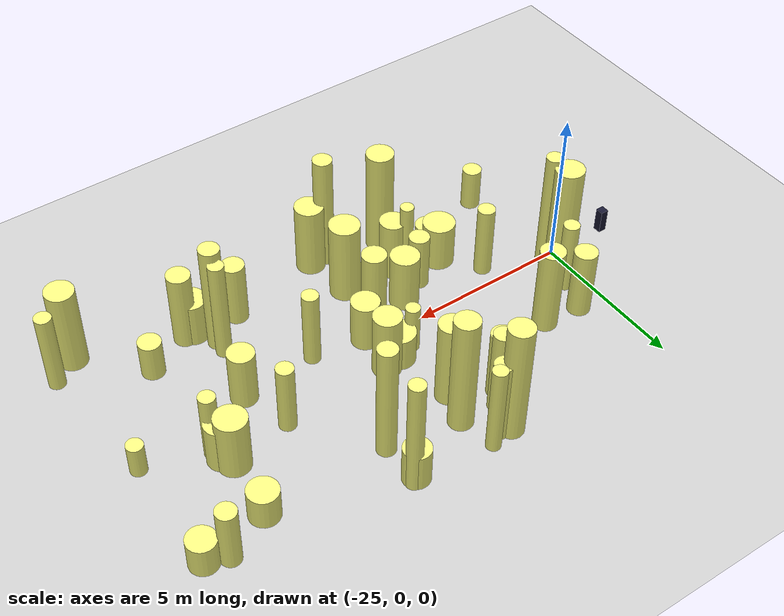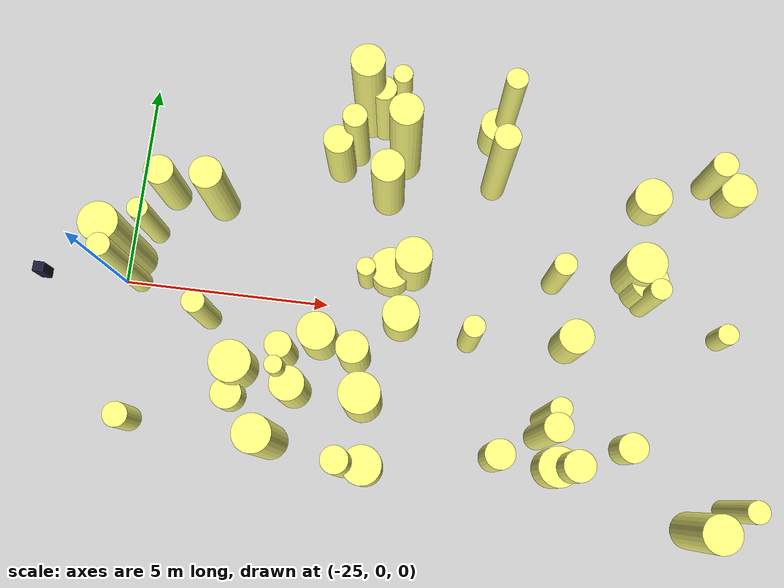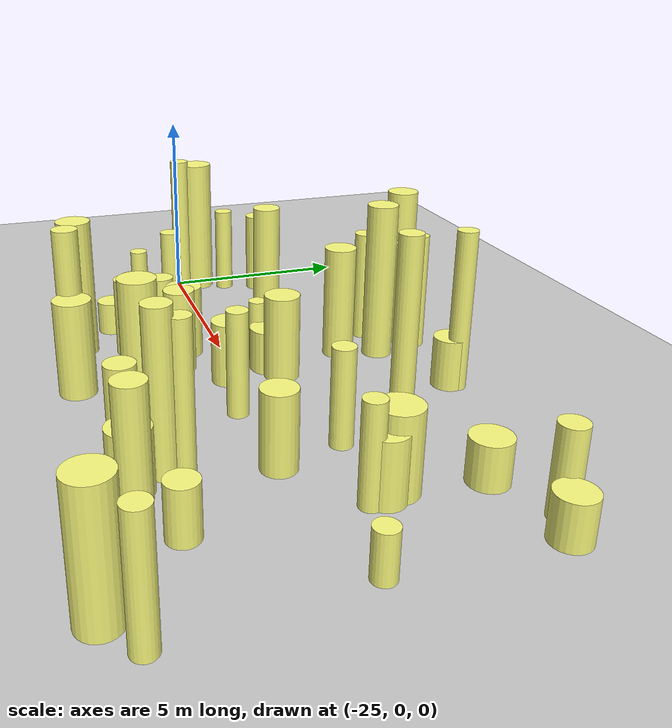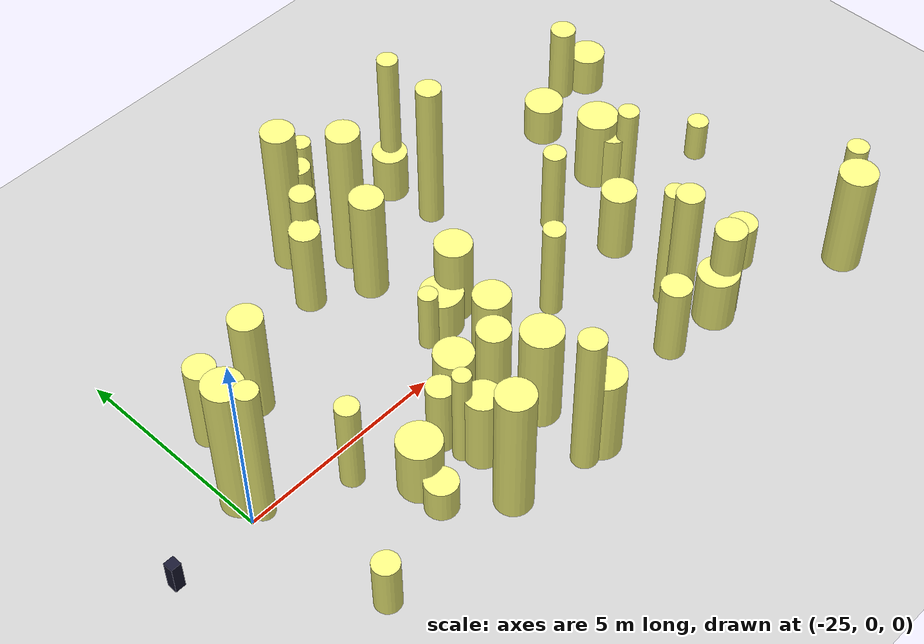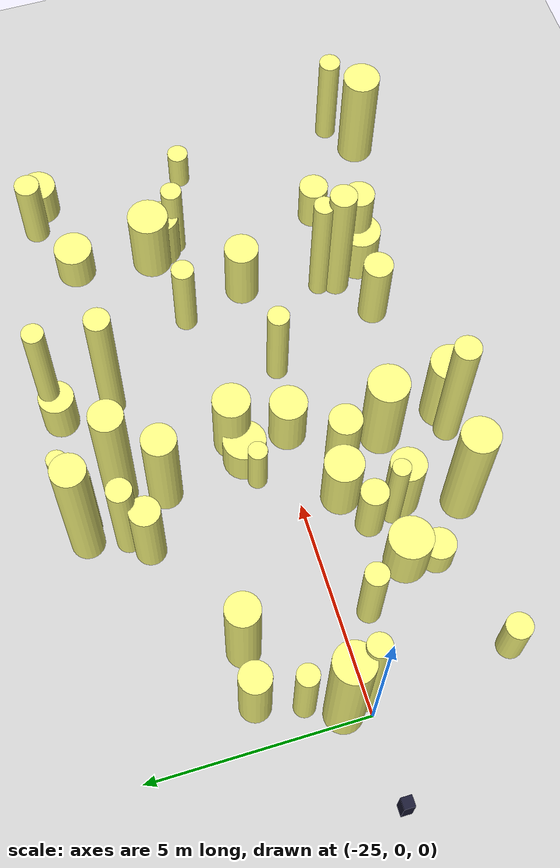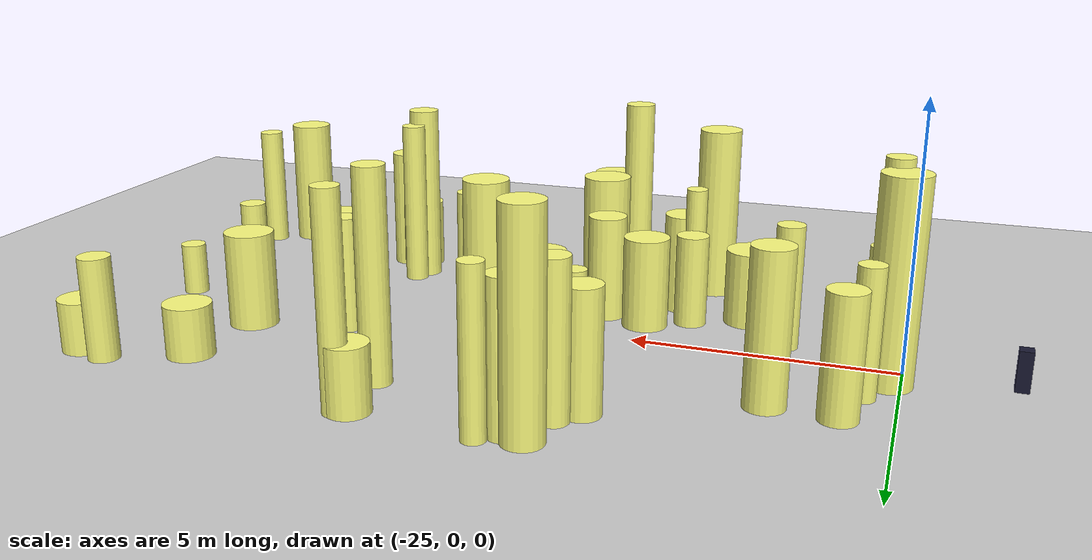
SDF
<sdf version="1.4">
 <world name="default">
  <include><uri>model://ground_plane</uri></include>
  <include><uri>model://sun</uri></include>
  <model name="forest">
   <static>true</static>
   <link name="cylinder0">
    <pose>-12.502721954358915 -2.6659656342065974 0.6085833904426031 0 0 0</pose>
    <visual name="visual">
     <geometry>
      <cylinder><radius>0.3510681015145204</radius><length>1.2171667808852062</length></cylinder>
     </geometry>
     <material>
      <ambient>0.6 0.6 0.6 1</ambient>
      <diffuse>1 1 0.5 1</diffuse>
      <specular>0 0 0</specular>
      <emissive>0 0 0 1</emissive>
     </material>
    </visual>
    <collision name="collision">
     <geometry>
      <cylinder><radius>0.3510681015145204</radius><length>1.2171667808852062</length></cylinder>
     </geometry>
     <max_contacts>0</max_contacts>
    </collision>
   </link>
   <link name="cylinder2">
    <pose>-18.162453601790588 -0.2444685721580253 0.7804369950678622 0 0 0</pose>
    <visual name="visual">
     <geometry>
      <cylinder><radius>0.4354509630093727</radius><length>1.5608739901357245</length></cylinder>
     </geometry>
     <material>
      <ambient>0.6 0.6 0.6 1</ambient>
      <diffuse>1 1 0.5 1</diffuse>
      <specular>0 0 0</specular>
      <emissive>0 0 0 1</emissive>
     </material>
    </visual>
    <collision name="collision">
     <geometry>
      <cylinder><radius>0.4354509630093727</radius><length>1.5608739901357245</length></cylinder>
     </geometry>
     <max_contacts>0</max_contacts>
    </collision>
   </link>
   <link name="cylinder6">
    <pose>-15.604253564923754 -3.2093322992431625 1.0340001270067756 0 0 0</pose>
    <visual name="visual">
     <geometry>
      <cylinder><radius>0.3472464015730837</radius><length>2.068000254013551</length></cylinder>
     </geometry>
     <material>
      <ambient>0.6 0.6 0.6 1</ambient>
      <diffuse>1 1 0.5 1</diffuse>
      <specular>0 0 0</specular>
      <emissive>0 0 0 1</emissive>
     </material>
    </visual>
    <collision name="collision">
     <geometry>
      <cylinder><radius>0.3472464015730837</radius><length>2.068000254013551</length></cylinder>
     </geometry>
     <max_contacts>0</max_contacts>
    </collision>
   </link>
   <link name="cylinder7">
    <pose>-24.395725136393526 -3.3159768479499006 0.6917096451607068 0 0 0</pose>
    <visual name="visual">
     <geometry>
      <cylinder><radius>0.29855471631764946</radius><length>1.3834192903214135</length></cylinder>
     </geometry>
     <material>
      <ambient>0.6 0.6 0.6 1</ambient>
      <diffuse>1 1 0.5 1</diffuse>
      <specular>0 0 0</specular>
      <emissive>0 0 0 1</emissive>
     </material>
    </visual>
    <collision name="collision">
     <geometry>
      <cylinder><radius>0.29855471631764946</radius><length>1.3834192903214135</length></cylinder>
     </geometry>
     <max_contacts>0</max_contacts>
    </collision>
   </link>
   <link name="cylinder9">
    <pose>-24.634450793001072 0.05189174106900296 1.98661205535265 0 0 0</pose>
    <visual name="visual">
     <geometry><cylinder><radius>0.2565379622526275</radius><length>3.9732241107053</length></cylinder></geometry>
     <material>
      <ambient>0.6 0.6 0.6 1</ambient>
      <diffuse>1 1 0.5 1</diffuse>
      <specular>0 0 0</specular>
      <emissive>0 0 0 1</emissive>
     </material>
    </visual>
    <collision name="collision">
     <geometry><cylinder><radius>0.2565379622526275</radius><length>3.9732241107053</length></cylinder></geometry>
     <max_contacts>0</max_contacts>
    </collision>
   </link>
   <link name="cylinder20">
    <pose>-19.49257124488244 4.815404987633817 1.9871582576625482 0 0 0</pose>
    <visual name="visual">
     <geometry>
      <cylinder><radius>0.38212930709392834</radius><length>3.9743165153250963</length></cylinder>
     </geometry>
     <material>
      <ambient>0.6 0.6 0.6 1</ambient>
      <diffuse>1 1 0.5 1</diffuse>
      <specular>0 0 0</specular>
      <emissive>0 0 0 1</emissive>
     </material>
    </visual>
    <collision name="collision">
     <geometry>
      <cylinder><radius>0.38212930709392834</radius><length>3.9743165153250963</length></cylinder>
     </geometry>
     <max_contacts>0</max_contacts>
    </collision>
   </link>
   <link name="cylinder25">
    <pose>-22.87648430715794 2.2072677745387717 1.423964659570777 0 0 0</pose>
    <visual name="visual">
     <geometry>
      <cylinder><radius>0.38179037752833966</radius><length>2.847929319141554</length></cylinder>
     </geometry>
     <material>
      <ambient>0.6 0.6 0.6 1</ambient>
      <diffuse>1 1 0.5 1</diffuse>
      <specular>0 0 0</specular>
      <emissive>0 0 0 1</emissive>
     </material>
    </visual>
    <collision name="collision">
     <geometry>
      <cylinder><radius>0.38179037752833966</radius><length>2.847929319141554</length></cylinder>
     </geometry>
     <max_contacts>0</max_contacts>
    </collision>
   </link>
   <link name="cylinder30">
    <pose>-12.437484253757225 3.403493577080285 0.5104835917112851 0 0 0</pose>
    <visual name="visual">
     <geometry>
      <cylinder><radius>0.4584076746730561</radius><length>1.0209671834225702</length></cylinder>
     </geometry>
     <material>
      <ambient>0.6 0.6 0.6 1</ambient>
      <diffuse>1 1 0.5 1</diffuse>
      <specular>0 0 0</specular>
      <emissive>0 0 0 1</emissive>
     </material>
    </visual>
    <collision name="collision">
     <geometry>
      <cylinder><radius>0.4584076746730561</radius><length>1.0209671834225702</length></cylinder>
     </geometry>
     <max_contacts>0</max_contacts>
    </collision>
   </link>
   <link name="cylinder38">
    <pose>-10.054779706547345 -3.8103376774504296 1.3178086906775555 0 0 0</pose>
    <visual name="visual">
     <geometry>
      <cylinder><radius>0.25343044838977596</radius><length>2.635617381355111</length></cylinder>
     </geometry>
     <material>
      <ambient>0.6 0.6 0.6 1</ambient>
      <diffuse>1 1 0.5 1</diffuse>
      <specular>0 0 0</specular>
      <emissive>0 0 0 1</emissive>
     </material>
    </visual>
    <collision name="collision">
     <geometry>
      <cylinder><radius>0.25343044838977596</radius><length>2.635617381355111</length></cylinder>
     </geometry>
     <max_contacts>0</max_contacts>
    </collision>
   </link>
   <link name="cylinder42">
    <pose>-18.82839487472479 2.847118229106637 1.428111722365252 0 0 0</pose>
    <visual name="visual">
     <geometry>
      <cylinder><radius>0.39076796356919996</radius><length>2.856223444730504</length></cylinder>
     </geometry>
     <material>
      <ambient>0.6 0.6 0.6 1</ambient>
      <diffuse>1 1 0.5 1</diffuse>
      <specular>0 0 0</specular>
      <emissive>0 0 0 1</emissive>
     </material>
    </visual>
    <collision name="collision">
     <geometry>
      <cylinder><radius>0.39076796356919996</radius><length>2.856223444730504</length></cylinder>
     </geometry>
     <max_contacts>0</max_contacts>
    </collision>
   </link>
   <link name="cylinder43">
    <pose>-18.843256166601506 -2.2814033712467485 1.3097579532869124 0 0 0</pose>
    <visual name="visual">
     <geometry>
      <cylinder><radius>0.47332808294365725</radius><length>2.6195159065738247</length></cylinder>
     </geometry>
     <material>
      <ambient>0.6 0.6 0.6 1</ambient>
      <diffuse>1 1 0.5 1</diffuse>
      <specular>0 0 0</specular>
      <emissive>0 0 0 1</emissive>
     </material>
    </visual>
    <collision name="collision">
     <geometry>
      <cylinder><radius>0.47332808294365725</radius><length>2.6195159065738247</length></cylinder>
     </geometry>
     <max_contacts>0</max_contacts>
    </collision>
   </link>
   <link name="cylinder46">
    <pose>-19.122946769099475 -3.8112538472455504 1.9331050397941834 0 0 0</pose>
    <visual name="visual">
     <geometry>
      <cylinder><radius>0.3000905206304188</radius><length>3.8662100795883667</length></cylinder>
     </geometry>
     <material>
      <ambient>0.6 0.6 0.6 1</ambient>
      <diffuse>1 1 0.5 1</diffuse>
      <specular>0 0 0</specular>
      <emissive>0 0 0 1</emissive>
     </material>
    </visual>
    <collision name="collision">
     <geometry>
      <cylinder><radius>0.3000905206304188</radius><length>3.8662100795883667</length></cylinder>
     </geometry>
     <max_contacts>0</max_contacts>
    </collision>
   </link>
   <link name="cylinder51">
    <pose>-14.109559301288204 -0.3474992445330791 0.9073661372124011 0 0 0</pose>
    <visual name="visual">
     <geometry>
      <cylinder><radius>0.40455226187245275</radius><length>1.8147322744248022</length></cylinder>
     </geometry>
     <material>
      <ambient>0.6 0.6 0.6 1</ambient>
      <diffuse>1 1 0.5 1</diffuse>
      <specular>0 0 0</specular>
      <emissive>0 0 0 1</emissive>
     </material>
    </visual>
    <collision name="collision">
     <geometry>
      <cylinder><radius>0.40455226187245275</radius><length>1.8147322744248022</length></cylinder>
     </geometry>
     <max_contacts>0</max_contacts>
    </collision>
   </link>
   <link name="cylinder53">
    <pose>-16.494669514456547 -0.5117610370310093 1.2593101118825551 0 0 0</pose>
    <visual name="visual">
     <geometry>
      <cylinder><radius>0.2535761571720407</radius><length>2.5186202237651103</length></cylinder>
     </geometry>
     <material>
      <ambient>0.6 0.6 0.6 1</ambient>
      <diffuse>1 1 0.5 1</diffuse>
      <specular>0 0 0</specular>
      <emissive>0 0 0 1</emissive>
     </material>
    </visual>
    <collision name="collision">
     <geometry>
      <cylinder><radius>0.2535761571720407</radius><length>2.5186202237651103</length></cylinder>
     </geometry>
     <max_contacts>0</max_contacts>
    </collision>
   </link>
   <link name="cylinder54">
    <pose>-22.805749904539645 -0.6607111246821127 1.2026532719093082 0 0 0</pose>
    <visual name="visual">
     <geometry>
      <cylinder><radius>0.26726074162941854</radius><length>2.4053065438186163</length></cylinder>
     </geometry>
     <material>
      <ambient>0.6 0.6 0.6 1</ambient>
      <diffuse>1 1 0.5 1</diffuse>
      <specular>0 0 0</specular>
      <emissive>0 0 0 1</emissive>
     </material>
    </visual>
    <collision name="collision">
     <geometry>
      <cylinder><radius>0.26726074162941854</radius><length>2.4053065438186163</length></cylinder>
     </geometry>
     <max_contacts>0</max_contacts>
    </collision>
   </link>
   <link name="cylinder55">
    <pose>-19.710329818238662 3.9275955160549767 1.434383724121817 0 0 0</pose>
    <visual name="visual">
     <geometry>
      <cylinder><radius>0.28443449646790175</radius><length>2.868767448243634</length></cylinder>
     </geometry>
     <material>
      <ambient>0.6 0.6 0.6 1</ambient>
      <diffuse>1 1 0.5 1</diffuse>
      <specular>0 0 0</specular>
      <emissive>0 0 0 1</emissive>
     </material>
    </visual>
    <collision name="collision">
     <geometry>
      <cylinder><radius>0.28443449646790175</radius><length>2.868767448243634</length></cylinder>
     </geometry>
     <max_contacts>0</max_contacts>
    </collision>
   </link>
   <link name="cylinder56">
    <pose>-24.097551499504693 2.3135811429826294 1.1331088385891852 0 0 0</pose>
    <visual name="visual">
     <geometry>
      <cylinder><radius>0.353535340649888</radius><length>2.2662176771783704</length></cylinder>
     </geometry>
     <material>
      <ambient>0.6 0.6 0.6 1</ambient>
      <diffuse>1 1 0.5 1</diffuse>
      <specular>0 0 0</specular>
      <emissive>0 0 0 1</emissive>
     </material>
    </visual>
    <collision name="collision">
     <geometry>
      <cylinder><radius>0.353535340649888</radius><length>2.2662176771783704</length></cylinder>
     </geometry>
     <max_contacts>0</max_contacts>
    </collision>
   </link>
   <link name="cylinder58">
    <pose>-14.54550295379825 -2.1772764706118677 1.7017071925377554 0 0 0</pose>
    <visual name="visual">
     <geometry>
      <cylinder><radius>0.2418624907264289</radius><length>3.4034143850755108</length></cylinder>
     </geometry>
     <material>
      <ambient>0.6 0.6 0.6 1</ambient>
      <diffuse>1 1 0.5 1</diffuse>
      <specular>0 0 0</specular>
      <emissive>0 0 0 1</emissive>
     </material>
    </visual>
    <collision name="collision">
     <geometry>
      <cylinder><radius>0.2418624907264289</radius><length>3.4034143850755108</length></cylinder>
     </geometry>
     <max_contacts>0</max_contacts>
    </collision>
   </link>
   <link name="cylinder61">
    <pose>-18.61169168680142 -3.8167598807858214 1.1742146294918732 0 0 0</pose>
    <visual name="visual">
     <geometry>
      <cylinder><radius>0.4480855897614787</radius><length>2.3484292589837463</length></cylinder>
     </geometry>
     <material>
      <ambient>0.6 0.6 0.6 1</ambient>
      <diffuse>1 1 0.5 1</diffuse>
      <specular>0 0 0</specular>
      <emissive>0 0 0 1</emissive>
     </material>
    </visual>
    <collision name="collision">
     <geometry>
      <cylinder><radius>0.4480855897614787</radius><length>2.3484292589837463</length></cylinder>
     </geometry>
     <max_contacts>0</max_contacts>
    </collision>
   </link>
   <link name="cylinder63">
    <pose>-24.777296737644782 0.5791565436668282 1.9116936432290066 0 0 0</pose>
    <visual name="visual">
     <geometry>
      <cylinder><radius>0.43988371552793637</radius><length>3.823387286458013</length></cylinder>
     </geometry>
     <material>
      <ambient>0.6 0.6 0.6 1</ambient>
      <diffuse>1 1 0.5 1</diffuse>
      <specular>0 0 0</specular>
      <emissive>0 0 0 1</emissive>
     </material>
    </visual>
    <collision name="collision">
     <geometry>
      <cylinder><radius>0.43988371552793637</radius><length>3.823387286458013</length></cylinder>
     </geometry>
     <max_contacts>0</max_contacts>
    </collision>
   </link>
   <link name="cylinder66">
    <pose>-21.950964235941306 -1.8020715551897135 0.7493875586951271 0 0 0</pose>
    <visual name="visual">
     <geometry>
      <cylinder><radius>0.4995488206285661</radius><length>1.4987751173902542</length></cylinder>
     </geometry>
     <material>
      <ambient>0.6 0.6 0.6 1</ambient>
      <diffuse>1 1 0.5 1</diffuse>
      <specular>0 0 0</specular>
      <emissive>0 0 0 1</emissive>
     </material>
    </visual>
    <collision name="collision">
     <geometry>
      <cylinder><radius>0.4995488206285661</radius><length>1.4987751173902542</length></cylinder>
     </geometry>
     <max_contacts>0</max_contacts>
    </collision>
   </link>
   <link name="cylinder67">
    <pose>-14.571014453200315 1.189533228159437 1.1406618700133115 0 0 0</pose>
    <visual name="visual">
     <geometry>
      <cylinder><radius>0.26389212586772715</radius><length>2.281323740026623</length></cylinder>
     </geometry>
     <material>
      <ambient>0.6 0.6 0.6 1</ambient>
      <diffuse>1 1 0.5 1</diffuse>
      <specular>0 0 0</specular>
      <emissive>0 0 0 1</emissive>
     </material>
    </visual>
    <collision name="collision">
     <geometry>
      <cylinder><radius>0.26389212586772715</radius><length>2.281323740026623</length></cylinder>
     </geometry>
     <max_contacts>0</max_contacts>
    </collision>
   </link>
   <link name="cylinder70">
    <pose>-19.15787869780511 -1.2277771723298079 1.0432503948201146 0 0 0</pose>
    <visual name="visual">
     <geometry>
      <cylinder><radius>0.3810207468841596</radius><length>2.0865007896402292</length></cylinder>
     </geometry>
     <material>
      <ambient>0.6 0.6 0.6 1</ambient>
      <diffuse>1 1 0.5 1</diffuse>
      <specular>0 0 0</specular>
      <emissive>0 0 0 1</emissive>
     </material>
    </visual>
    <collision name="collision">
     <geometry>
      <cylinder><radius>0.3810207468841596</radius><length>2.0865007896402292</length></cylinder>
     </geometry>
     <max_contacts>0</max_contacts>
    </collision>
   </link>
   <link name="cylinder73">
    <pose>-20.07237889721357 3.518384226940082 1.1502417446762592 0 0 0</pose>
    <visual name="visual">
     <geometry>
      <cylinder><radius>0.3491052908411866</radius><length>2.3004834893525183</length></cylinder>
     </geometry>
     <material>
      <ambient>0.6 0.6 0.6 1</ambient>
      <diffuse>1 1 0.5 1</diffuse>
      <specular>0 0 0</specular>
      <emissive>0 0 0 1</emissive>
     </material>
    </visual>
    <collision name="collision">
     <geometry>
      <cylinder><radius>0.3491052908411866</radius><length>2.3004834893525183</length></cylinder>
     </geometry>
     <max_contacts>0</max_contacts>
    </collision>
   </link>
   <link name="cylinder77">
    <pose>-19.131900366275012 4.705054420219337 1.3739754272877218 0 0 0</pose>
    <visual name="visual">
     <geometry>
      <cylinder><radius>0.29365385042139736</radius><length>2.7479508545754436</length></cylinder>
     </geometry>
     <material>
      <ambient>0.6 0.6 0.6 1</ambient>
      <diffuse>1 1 0.5 1</diffuse>
      <specular>0 0 0</specular>
      <emissive>0 0 0 1</emissive>
     </material>
    </visual>
    <collision name="collision">
     <geometry>
      <cylinder><radius>0.29365385042139736</radius><length>2.7479508545754436</length></cylinder>
     </geometry>
     <max_contacts>0</max_contacts>
    </collision>
   </link>
   <link name="cylinder81">
    <pose>-12.473571658972798 1.2151662505529615 0.7502490287101929 0 0 0</pose>
    <visual name="visual">
     <geometry>
      <cylinder><radius>0.4398459780291022</radius><length>1.5004980574203859</length></cylinder>
     </geometry>
     <material>
      <ambient>0.6 0.6 0.6 1</ambient>
      <diffuse>1 1 0.5 1</diffuse>
      <specular>0 0 0</specular>
      <emissive>0 0 0 1</emissive>
     </material>
    </visual>
    <collision name="collision">
     <geometry>
      <cylinder><radius>0.4398459780291022</radius><length>1.5004980574203859</length></cylinder>
     </geometry>
     <max_contacts>0</max_contacts>
    </collision>
   </link>
   <link name="cylinder82">
    <pose>-10.454111830440377 0.2478670152898239 0.524045633966265 0 0 0</pose>
    <visual name="visual">
     <geometry>
      <cylinder><radius>0.25075941462220197</radius><length>1.04809126793253</length></cylinder>
     </geometry>
     <material>
      <ambient>0.6 0.6 0.6 1</ambient>
      <diffuse>1 1 0.5 1</diffuse>
      <specular>0 0 0</specular>
      <emissive>0 0 0 1</emissive>
     </material>
    </visual>
    <collision name="collision">
     <geometry>
      <cylinder><radius>0.25075941462220197</radius><length>1.04809126793253</length></cylinder>
     </geometry>
     <max_contacts>0</max_contacts>
    </collision>
   </link>
   <link name="cylinder85">
    <pose>-16.28044864846122 3.444077093092373 1.9729433822088338 0 0 0</pose>
    <visual name="visual">
     <geometry>
      <cylinder><radius>0.2915125441848997</radius><length>3.9458867644176676</length></cylinder>
     </geometry>
     <material>
      <ambient>0.6 0.6 0.6 1</ambient>
      <diffuse>1 1 0.5 1</diffuse>
      <specular>0 0 0</specular>
      <emissive>0 0 0 1</emissive>
     </material>
    </visual>
    <collision name="collision">
     <geometry>
      <cylinder><radius>0.2915125441848997</radius><length>3.9458867644176676</length></cylinder>
     </geometry>
     <max_contacts>0</max_contacts>
    </collision>
   </link>
   <link name="cylinder86">
    <pose>-20.79591894531364 -1.8833026183785293 1.304631273310267 0 0 0</pose>
    <visual name="visual">
     <geometry>
      <cylinder><radius>0.20748581537525626</radius><length>2.609262546620534</length></cylinder>
     </geometry>
     <material>
      <ambient>0.6 0.6 0.6 1</ambient>
      <diffuse>1 1 0.5 1</diffuse>
      <specular>0 0 0</specular>
      <emissive>0 0 0 1</emissive>
     </material>
    </visual>
    <collision name="collision">
     <geometry>
      <cylinder><radius>0.20748581537525626</radius><length>2.609262546620534</length></cylinder>
     </geometry>
     <max_contacts>0</max_contacts>
    </collision>
   </link>
   <link name="cylinder89">
    <pose>-18.538575459417288 0.8975627072875758 0.5418179239034299 0 0 0</pose>
    <visual name="visual">
     <geometry>
      <cylinder><radius>0.495280417912179</radius><length>1.0836358478068597</length></cylinder>
     </geometry>
     <material>
      <ambient>0.6 0.6 0.6 1</ambient>
      <diffuse>1 1 0.5 1</diffuse>
      <specular>0 0 0</specular>
      <emissive>0 0 0 1</emissive>
     </material>
    </visual>
    <collision name="collision">
     <geometry>
      <cylinder><radius>0.495280417912179</radius><length>1.0836358478068597</length></cylinder>
     </geometry>
     <max_contacts>0</max_contacts>
    </collision>
   </link>
   <link name="cylinder96">
    <pose>-14.604319433531 -2.5985632078970724 1.8355189407777162 0 0 0</pose>
    <visual name="visual">
     <geometry>
      <cylinder><radius>0.3122220851284629</radius><length>3.6710378815554323</length></cylinder>
     </geometry>
     <material>
      <ambient>0.6 0.6 0.6 1</ambient>
      <diffuse>1 1 0.5 1</diffuse>
      <specular>0 0 0</specular>
      <emissive>0 0 0 1</emissive>
     </material>
    </visual>
    <collision name="collision">
     <geometry>
      <cylinder><radius>0.3122220851284629</radius><length>3.6710378815554323</length></cylinder>
     </geometry>
     <max_contacts>0</max_contacts>
    </collision>
   </link>
   <link name="cylinder97">
    <pose>-22.041307113895776 -2.495609636847166 0.4295317646186678 0 0 0</pose>
    <visual name="visual">
     <geometry>
      <cylinder><radius>0.3750792223847486</radius><length>0.8590635292373356</length></cylinder>
     </geometry>
     <material>
      <ambient>0.6 0.6 0.6 1</ambient>
      <diffuse>1 1 0.5 1</diffuse>
      <specular>0 0 0</specular>
      <emissive>0 0 0 1</emissive>
     </material>
    </visual>
    <collision name="collision">
     <geometry>
      <cylinder><radius>0.3750792223847486</radius><length>0.8590635292373356</length></cylinder>
     </geometry>
     <max_contacts>0</max_contacts>
    </collision>
   </link>
   <link name="cylinder102">
    <pose>-20.93075195524175 -3.462613262601657 1.7541170120772427 0 0 0</pose>
    <visual name="visual">
     <geometry>
      <cylinder><radius>0.4276249674449577</radius><length>3.5082340241544854</length></cylinder>
     </geometry>
     <material>
      <ambient>0.6 0.6 0.6 1</ambient>
      <diffuse>1 1 0.5 1</diffuse>
      <specular>0 0 0</specular>
      <emissive>0 0 0 1</emissive>
     </material>
    </visual>
    <collision name="collision">
     <geometry>
      <cylinder><radius>0.4276249674449577</radius><length>3.5082340241544854</length></cylinder>
     </geometry>
     <max_contacts>0</max_contacts>
    </collision>
   </link>
   <link name="cylinder104">
    <pose>-16.36803477911813 4.693656611833211 0.6230062373205562 0 0 0</pose>
    <visual name="visual">
     <geometry>
      <cylinder><radius>0.4115219410225628</radius><length>1.2460124746411123</length></cylinder>
     </geometry>
     <material>
      <ambient>0.6 0.6 0.6 1</ambient>
      <diffuse>1 1 0.5 1</diffuse>
      <specular>0 0 0</specular>
      <emissive>0 0 0 1</emissive>
     </material>
    </visual>
    <collision name="collision">
     <geometry>
      <cylinder><radius>0.4115219410225628</radius><length>1.2460124746411123</length></cylinder>
     </geometry>
     <max_contacts>0</max_contacts>
    </collision>
   </link>
   <link name="cylinder107">
    <pose>-10.390217408402048 3.811011985422958 0.5061870851489898 0 0 0</pose>
    <visual name="visual">
     <geometry>
      <cylinder><radius>0.42941939991450384</radius><length>1.0123741702979796</length></cylinder>
     </geometry>
     <material>
      <ambient>0.6 0.6 0.6 1</ambient>
      <diffuse>1 1 0.5 1</diffuse>
      <specular>0 0 0</specular>
      <emissive>0 0 0 1</emissive>
     </material>
    </visual>
    <collision name="collision">
     <geometry>
      <cylinder><radius>0.42941939991450384</radius><length>1.0123741702979796</length></cylinder>
     </geometry>
     <max_contacts>0</max_contacts>
    </collision>
   </link>
   <link name="cylinder111">
    <pose>-16.20273688729197 4.807904855583713 1.9510681703880337 0 0 0</pose>
    <visual name="visual">
     <geometry>
      <cylinder><radius>0.24294534919403082</radius><length>3.9021363407760674</length></cylinder>
     </geometry>
     <material>
      <ambient>0.6 0.6 0.6 1</ambient>
      <diffuse>1 1 0.5 1</diffuse>
      <specular>0 0 0</specular>
      <emissive>0 0 0 1</emissive>
     </material>
    </visual>
    <collision name="collision">
     <geometry>
      <cylinder><radius>0.24294534919403082</radius><length>3.9021363407760674</length></cylinder>
     </geometry>
     <max_contacts>0</max_contacts>
    </collision>
   </link>
   <link name="cylinder114">
    <pose>-13.908718793123903 -3.2823868718391322 1.2673436649258805 0 0 0</pose>
    <visual name="visual">
     <geometry>
      <cylinder><radius>0.35916579970994567</radius><length>2.534687329851761</length></cylinder>
     </geometry>
     <material>
      <ambient>0.6 0.6 0.6 1</ambient>
      <diffuse>1 1 0.5 1</diffuse>
      <specular>0 0 0</specular>
      <emissive>0 0 0 1</emissive>
     </material>
    </visual>
    <collision name="collision">
     <geometry>
      <cylinder><radius>0.35916579970994567</radius><length>2.534687329851761</length></cylinder>
     </geometry>
     <max_contacts>0</max_contacts>
    </collision>
   </link>
   <link name="cylinder115">
    <pose>-10.831256980114755 -4.364179941155668 1.3832199864570636 0 0 0</pose>
    <visual name="visual">
     <geometry>
      <cylinder><radius>0.43894951229227175</radius><length>2.766439972914127</length></cylinder>
     </geometry>
     <material>
      <ambient>0.6 0.6 0.6 1</ambient>
      <diffuse>1 1 0.5 1</diffuse>
      <specular>0 0 0</specular>
      <emissive>0 0 0 1</emissive>
     </material>
    </visual>
    <collision name="collision">
     <geometry>
      <cylinder><radius>0.43894951229227175</radius><length>2.766439972914127</length></cylinder>
     </geometry>
     <max_contacts>0</max_contacts>
    </collision>
   </link>
   <link name="cylinder116">
    <pose>-20.857658008479934 -1.3316109614898277 0.9100707479111858 0 0 0</pose>
    <visual name="visual">
     <geometry>
      <cylinder><radius>0.317359588114245</radius><length>1.8201414958223716</length></cylinder>
     </geometry>
     <material>
      <ambient>0.6 0.6 0.6 1</ambient>
      <diffuse>1 1 0.5 1</diffuse>
      <specular>0 0 0</specular>
      <emissive>0 0 0 1</emissive>
     </material>
    </visual>
    <collision name="collision">
     <geometry>
      <cylinder><radius>0.317359588114245</radius><length>1.8201414958223716</length></cylinder>
     </geometry>
     <max_contacts>0</max_contacts>
    </collision>
   </link>
   <link name="cylinder119">
    <pose>-12.381449604811866 0.8708667843847238 1.1360815766539958 0 0 0</pose>
    <visual name="visual">
     <geometry>
      <cylinder><radius>0.24805818032337174</radius><length>2.2721631533079916</length></cylinder>
     </geometry>
     <material>
      <ambient>0.6 0.6 0.6 1</ambient>
      <diffuse>1 1 0.5 1</diffuse>
      <specular>0 0 0</specular>
      <emissive>0 0 0 1</emissive>
     </material>
    </visual>
    <collision name="collision">
     <geometry>
      <cylinder><radius>0.24805818032337174</radius><length>2.2721631533079916</length></cylinder>
     </geometry>
     <max_contacts>0</max_contacts>
    </collision>
   </link>
   <link name="cylinder122">
    <pose>-20.03585580293435 -0.9184188762301808 0.9104262956513443 0 0 0</pose>
    <visual name="visual">
     <geometry>
      <cylinder><radius>0.4493938798735404</radius><length>1.8208525913026885</length></cylinder>
     </geometry>
     <material>
      <ambient>0.6 0.6 0.6 1</ambient>
      <diffuse>1 1 0.5 1</diffuse>
      <specular>0 0 0</specular>
      <emissive>0 0 0 1</emissive>
     </material>
    </visual>
    <collision name="collision">
     <geometry>
      <cylinder><radius>0.4493938798735404</radius><length>1.8208525913026885</length></cylinder>
     </geometry>
     <max_contacts>0</max_contacts>
    </collision>
   </link>
   <link name="cylinder124">
    <pose>-19.101055602580104 0.7544745946272613 0.791822843688906 0 0 0</pose>
    <visual name="visual">
     <geometry>
      <cylinder><radius>0.22300250673651503</radius><length>1.583645687377812</length></cylinder>
     </geometry>
     <material>
      <ambient>0.6 0.6 0.6 1</ambient>
      <diffuse>1 1 0.5 1</diffuse>
      <specular>0 0 0</specular>
      <emissive>0 0 0 1</emissive>
     </material>
    </visual>
    <collision name="collision">
     <geometry>
      <cylinder><radius>0.22300250673651503</radius><length>1.583645687377812</length></cylinder>
     </geometry>
     <max_contacts>0</max_contacts>
    </collision>
   </link>
   <link name="cylinder125">
    <pose>-14.194400764570142 -3.3023342177779744 0.7149660700001347 0 0 0</pose>
    <visual name="visual">
     <geometry>
      <cylinder><radius>0.4738928855101009</radius><length>1.4299321400002694</length></cylinder>
     </geometry>
     <material>
      <ambient>0.6 0.6 0.6 1</ambient>
      <diffuse>1 1 0.5 1</diffuse>
      <specular>0 0 0</specular>
      <emissive>0 0 0 1</emissive>
     </material>
    </visual>
    <collision name="collision">
     <geometry>
      <cylinder><radius>0.4738928855101009</radius><length>1.4299321400002694</length></cylinder>
     </geometry>
     <max_contacts>0</max_contacts>
    </collision>
   </link>
   <link name="cylinder131">
    <pose>-18.52820347995075 3.806525450684166 1.9798081917466295 0 0 0</pose>
    <visual name="visual">
     <geometry>
      <cylinder><radius>0.3771136782364064</radius><length>3.959616383493259</length></cylinder>
     </geometry>
     <material>
      <ambient>0.6 0.6 0.6 1</ambient>
      <diffuse>1 1 0.5 1</diffuse>
      <specular>0 0 0</specular>
      <emissive>0 0 0 1</emissive>
     </material>
    </visual>
    <collision name="collision">
     <geometry>
      <cylinder><radius>0.3771136782364064</radius><length>3.959616383493259</length></cylinder>
     </geometry>
     <max_contacts>0</max_contacts>
    </collision>
   </link>
   <link name="cylinder133">
    <pose>-11.020579606587432 4.08486481500087 0.9870851467269027 0 0 0</pose>
    <visual name="visual">
     <geometry>
      <cylinder><radius>0.3003400484361066</radius><length>1.9741702934538055</length></cylinder>
     </geometry>
     <material>
      <ambient>0.6 0.6 0.6 1</ambient>
      <diffuse>1 1 0.5 1</diffuse>
      <specular>0 0 0</specular>
      <emissive>0 0 0 1</emissive>
     </material>
    </visual>
    <collision name="collision">
     <geometry>
      <cylinder><radius>0.3003400484361066</radius><length>1.9741702934538055</length></cylinder>
     </geometry>
     <max_contacts>0</max_contacts>
    </collision>
   </link>
   <link name="cylinder136">
    <pose>-24.39275978869599 1.3176945676981404 1.2057490285462782 0 0 0</pose>
    <visual name="visual">
     <geometry>
      <cylinder><radius>0.24642099753010838</radius><length>2.4114980570925564</length></cylinder>
     </geometry>
     <material>
      <ambient>0.6 0.6 0.6 1</ambient>
      <diffuse>1 1 0.5 1</diffuse>
      <specular>0 0 0</specular>
      <emissive>0 0 0 1</emissive>
     </material>
    </visual>
    <collision name="collision">
     <geometry>
      <cylinder><radius>0.24642099753010838</radius><length>2.4114980570925564</length></cylinder>
     </geometry>
     <max_contacts>0</max_contacts>
    </collision>
   </link>
   <link name="cylinder139">
    <pose>-20.520217186484118 -2.199760875219382 0.9949769471764194 0 0 0</pose>
    <visual name="visual">
     <geometry>
      <cylinder><radius>0.4081893537230731</radius><length>1.9899538943528388</length></cylinder>
     </geometry>
     <material>
      <ambient>0.6 0.6 0.6 1</ambient>
      <diffuse>1 1 0.5 1</diffuse>
      <specular>0 0 0</specular>
      <emissive>0 0 0 1</emissive>
     </material>
    </visual>
    <collision name="collision">
     <geometry>
      <cylinder><radius>0.4081893537230731</radius><length>1.9899538943528388</length></cylinder>
     </geometry>
     <max_contacts>0</max_contacts>
    </collision>
   </link>
   <link name="cylinder142">
    <pose>-12.661332366099447 1.5384153738401798 0.9463496751539917 0 0 0</pose>
    <visual name="visual">
     <geometry>
      <cylinder><radius>0.482300231207985</radius><length>1.8926993503079834</length></cylinder>
     </geometry>
     <material>
      <ambient>0.6 0.6 0.6 1</ambient>
      <diffuse>1 1 0.5 1</diffuse>
      <specular>0 0 0</specular>
      <emissive>0 0 0 1</emissive>
     </material>
    </visual>
    <collision name="collision">
     <geometry>
      <cylinder><radius>0.482300231207985</radius><length>1.8926993503079834</length></cylinder>
     </geometry>
     <max_contacts>0</max_contacts>
    </collision>
   </link>
   <link name="cylinder144">
    <pose>-18.7311522736126 4.99841822510073 1.4986558010171347 0 0 0</pose>
    <visual name="visual">
     <geometry>
      <cylinder><radius>0.22248810052081058</radius><length>2.9973116020342694</length></cylinder>
     </geometry>
     <material>
      <ambient>0.6 0.6 0.6 1</ambient>
      <diffuse>1 1 0.5 1</diffuse>
      <specular>0 0 0</specular>
      <emissive>0 0 0 1</emissive>
     </material>
    </visual>
    <collision name="collision">
     <geometry>
      <cylinder><radius>0.22248810052081058</radius><length>2.9973116020342694</length></cylinder>
     </geometry>
     <max_contacts>0</max_contacts>
    </collision>
   </link>
   <link name="cylinder149">
    <pose>-18.015826399926226 1.0363430588621316 1.0581919569330414 0 0 0</pose>
    <visual name="visual">
     <geometry>
      <cylinder><radius>0.43101604797579024</radius><length>2.1163839138660827</length></cylinder>
     </geometry>
     <material>
      <ambient>0.6 0.6 0.6 1</ambient>
      <diffuse>1 1 0.5 1</diffuse>
      <specular>0 0 0</specular>
      <emissive>0 0 0 1</emissive>
     </material>
    </visual>
    <collision name="collision">
     <geometry>
      <cylinder><radius>0.43101604797579024</radius><length>2.1163839138660827</length></cylinder>
     </geometry>
     <max_contacts>0</max_contacts>
    </collision>
   </link>
   <link name="cube3">
    <pose>-27.0 0.0 0.25 0 0 0</pose>
    <visual name="visual">
     <geometry><box><size>0.25 0.25 1.0</size></box></geometry>
     <material>
      <ambient>0.1 0.1 0.1 1</ambient>
      <diffuse>0.1 0.1 0.2 1</diffuse>
      <specular>0 0 0</specular>
      <emissive>0 0 0 1</emissive>
     </material>
    </visual>
    <collision name="collision">
     <geometry><box><size>0.25 0.25 1.0</size></box></geometry>
     <max_contacts>0</max_contacts>
    </collision>
   </link>
  </model>
 </world>
</sdf>
